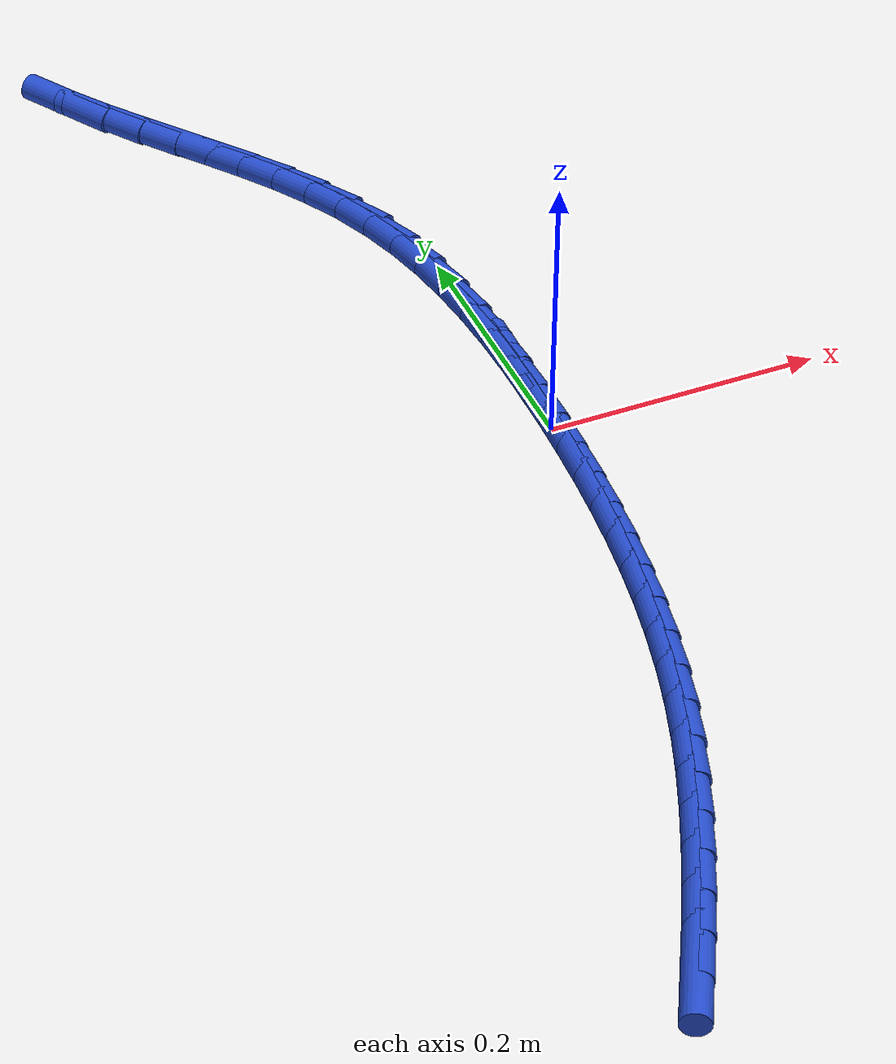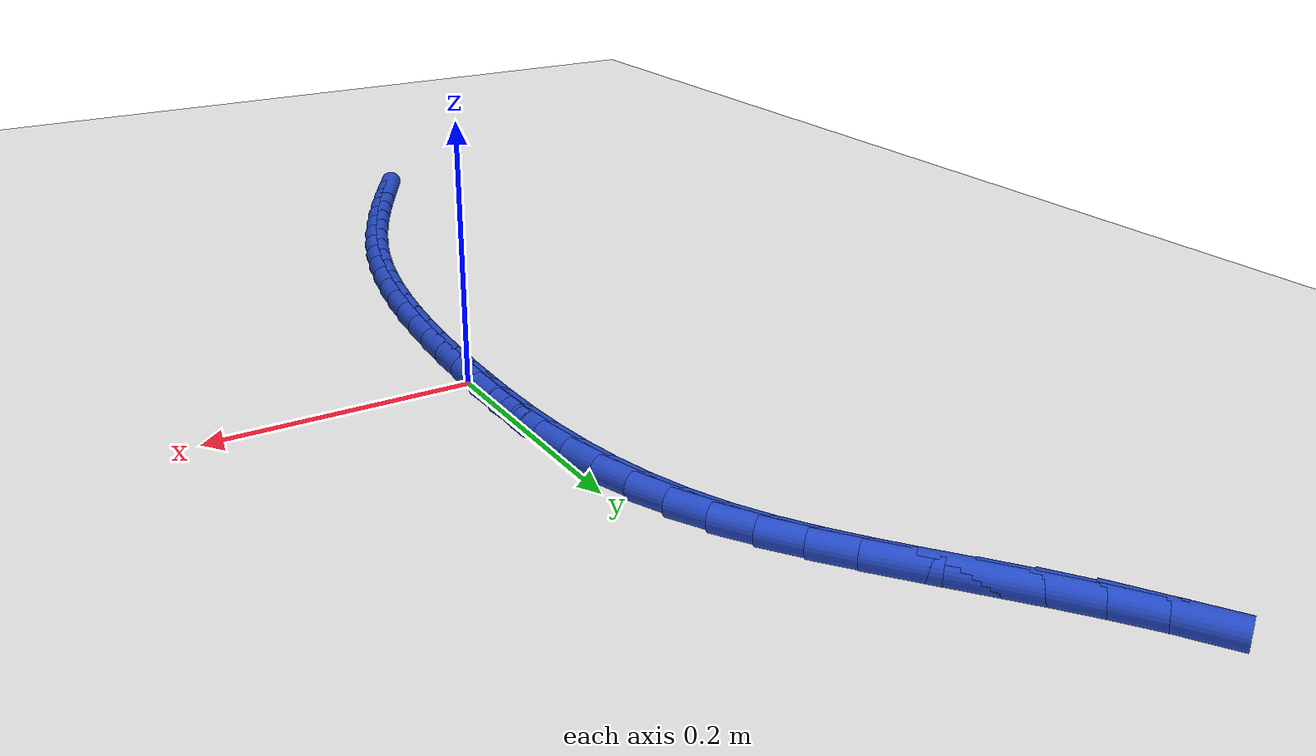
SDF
<sdf version="1.6">
 <world name="default">
  <model name="ground_plane">
   <static>1</static>
   <link name="link">
    <collision name="collision">
     <geometry><plane><normal>0 0 1</normal><size>100 100</size></plane></geometry>
     <surface><friction><ode><mu>100</mu><mu2>50</mu2></ode></friction></surface>
    </collision>
    <visual name="visual">
     <cast_shadows>0</cast_shadows>
     <geometry><plane><normal>0 0 1</normal><size>100 100</size></plane></geometry>
     <material>
      <script><uri>file://media/materials/scripts/gazebo.material</uri><name>Gazebo/WhiteGlow</name></script>
     </material>
    </visual>
   </link>
  </model>
  <model name="line">
   <link name="link_0">
    <pose>-9.540979117872439e-18 -2.7755575615628914e-17 0.01 0 1.57 1.5509723002207512</pose>
    <collision name="collision">
     <geometry><cylinder><radius>0.01</radius><length>0.08</length></cylinder></geometry>
    </collision>
    <visual name="visual">
     <material>
      <script><name>Gazebo/Blue</name><uri>file://media/materials/scripts/gazebo.material</uri></script>
     </material>
     <geometry><cylinder><radius>0.01</radius><length>0.08</length></cylinder></geometry>
    </visual>
   </link>
   <link name="link_1">
    <pose>0.0006480934380880519 0.032688038170322134 0.01 0 1.57 -1.5671096846617614</pose>
    <collision name="collision">
     <geometry><cylinder><radius>0.01</radius><length>0.08</length></cylinder></geometry>
    </collision>
    <visual name="visual">
     <material>
      <script><name>Gazebo/Blue</name><uri>file://media/materials/scripts/gazebo.material</uri></script>
     </material>
     <geometry><cylinder><radius>0.01</radius><length>0.08</length></cylinder></geometry>
    </visual>
   </link>
   <link name="link_2">
    <pose>0.000527345814850162 0.06544062760986999 0.01 0 1.57 -1.5366535923674727</pose>
    <collision name="collision">
     <geometry><cylinder><radius>0.01</radius><length>0.08</length></cylinder></geometry>
    </collision>
    <visual name="visual">
     <material>
      <script><name>Gazebo/Blue</name><uri>file://media/materials/scripts/gazebo.material</uri></script>
     </material>
     <geometry><cylinder><radius>0.01</radius><length>0.08</length></cylinder></geometry>
    </visual>
   </link>
   <link name="link_3">
    <pose>-0.0005877928225679215 0.09808901699485471 0.01 0 1.57 -1.498795968035626</pose>
    <collision name="collision">
     <geometry><cylinder><radius>0.01</radius><length>0.08</length></cylinder></geometry>
    </collision>
    <visual name="visual">
     <material>
      <script><name>Gazebo/Blue</name><uri>file://media/materials/scripts/gazebo.material</uri></script>
     </material>
     <geometry><cylinder><radius>0.01</radius><length>0.08</length></cylinder></geometry>
    </visual>
   </link>
   <link name="link_4">
    <pose>-0.0029228724270204402 0.13046445500148754 0.01 0 1.57 -1.4529568356450675</pose>
    <collision name="collision">
     <geometry><cylinder><radius>0.01</radius><length>0.08</length></cylinder></geometry>
    </collision>
    <visual name="visual">
     <material>
      <script><name>Gazebo/Blue</name><uri>file://media/materials/scripts/gazebo.material</uri></script>
     </material>
     <geometry><cylinder><radius>0.01</radius><length>0.08</length></cylinder></geometry>
    </visual>
   </link>
   <link name="link_5">
    <pose>-0.00670344295136164 0.1623981903059797 0.01 0 1.57 -1.3984789537789857</pose>
    <collision name="collision">
     <geometry><cylinder><radius>0.01</radius><length>0.08</length></cylinder></geometry>
    </collision>
    <visual name="visual">
     <material>
      <script><name>Gazebo/Blue</name><uri>file://media/materials/scripts/gazebo.material</uri></script>
     </material>
     <geometry><cylinder><radius>0.01</radius><length>0.08</length></cylinder></geometry>
    </visual>
   </link>
   <link name="link_6">
    <pose>-0.012155054348445762 0.19372147158454245 0.01 0 1.57 -1.334705840565855</pose>
    <collision name="collision">
     <geometry><cylinder><radius>0.01</radius><length>0.08</length></cylinder></geometry>
    </collision>
    <visual name="visual">
     <material>
      <script><name>Gazebo/Blue</name><uri>file://media/materials/scripts/gazebo.material</uri></script>
     </material>
     <geometry><cylinder><radius>0.01</radius><length>0.08</length></cylinder></geometry>
    </visual>
   </link>
   <link name="link_7">
    <pose>-0.019503256571127038 0.2242655475133869 0.01 0 1.57 -1.2611061068454434</pose>
    <collision name="collision">
     <geometry><cylinder><radius>0.01</radius><length>0.08</length></cylinder></geometry>
    </collision>
    <visual name="visual">
     <material>
      <script><name>Gazebo/Blue</name><uri>file://media/materials/scripts/gazebo.material</uri></script>
     </material>
     <geometry><cylinder><radius>0.01</radius><length>0.08</length></cylinder></geometry>
    </visual>
   </link>
   <link name="link_8">
    <pose>-0.028973599572259735 0.2538616667687244 0.01 0 1.57 -1.1774538288376382</pose>
    <collision name="collision">
     <geometry><cylinder><radius>0.01</radius><length>0.08</length></cylinder></geometry>
    </collision>
    <visual name="visual">
     <material>
      <script><name>Gazebo/Blue</name><uri>file://media/materials/scripts/gazebo.material</uri></script>
     </material>
     <geometry><cylinder><radius>0.01</radius><length>0.08</length></cylinder></geometry>
    </visual>
   </link>
   <link name="link_9">
    <pose>-0.040791632058986144 0.28234107882616594 0.01 0 1.57 -1.0889719972497625</pose>
    <collision name="collision">
     <geometry><cylinder><radius>0.01</radius><length>0.08</length></cylinder></geometry>
    </collision>
    <visual name="visual">
     <material>
      <script><name>Gazebo/Blue</name><uri>file://media/materials/scripts/gazebo.material</uri></script>
     </material>
     <geometry><cylinder><radius>0.01</radius><length>0.08</length></cylinder></geometry>
    </visual>
   </link>
   <link name="link_10">
    <pose>-0.05505510315193037 0.3096170448844138 0.01 0 1.57 -1.0150823429295994</pose>
    <collision name="collision">
     <geometry><cylinder><radius>0.01</radius><length>0.08</length></cylinder></geometry>
    </collision>
    <visual name="visual">
     <material>
      <script><name>Gazebo/Blue</name><uri>file://media/materials/scripts/gazebo.material</uri></script>
     </material>
     <geometry><cylinder><radius>0.01</radius><length>0.08</length></cylinder></geometry>
    </visual>
   </link>
   <link name="link_11">
    <pose>-0.07138294812909438 0.33591009120728466 0.01 0 1.57 -0.9606677409715202</pose>
    <collision name="collision">
     <geometry><cylinder><radius>0.01</radius><length>0.08</length></cylinder></geometry>
    </collision>
    <visual name="visual">
     <material>
      <script><name>Gazebo/Blue</name><uri>file://media/materials/scripts/gazebo.material</uri></script>
     </material>
     <geometry><cylinder><radius>0.01</radius><length>0.08</length></cylinder></geometry>
    </visual>
   </link>
   <link name="link_12">
    <pose>-0.0892819881450799 0.3615126900851312 0.01 0 1.57 -0.9254292658346407</pose>
    <collision name="collision">
     <geometry><cylinder><radius>0.01</radius><length>0.08</length></cylinder></geometry>
    </collision>
    <visual name="visual">
     <material>
      <script><name>Gazebo/Blue</name><uri>file://media/materials/scripts/gazebo.material</uri></script>
     </material>
     <geometry><cylinder><radius>0.01</radius><length>0.08</length></cylinder></geometry>
    </visual>
   </link>
   <link name="link_13">
    <pose>-0.1082590443544886 0.38671731380830593 0.01 0 1.57 -0.9087521366788066</pose>
    <collision name="collision">
     <geometry><cylinder><radius>0.01</radius><length>0.08</length></cylinder></geometry>
    </collision>
    <visual name="visual">
     <material>
      <script><name>Gazebo/Blue</name><uri>file://media/materials/scripts/gazebo.material</uri></script>
     </material>
     <geometry><cylinder><radius>0.01</radius><length>0.08</length></cylinder></geometry>
    </visual>
   </link>
   <link name="link_14">
    <pose>-0.12782093791192217 0.41181643466716134 0.01 0 1.57 -0.9100836072281419</pose>
    <collision name="collision">
     <geometry><cylinder><radius>0.01</radius><length>0.08</length></cylinder></geometry>
    </collision>
    <visual name="visual">
     <material>
      <script><name>Gazebo/Blue</name><uri>file://media/materials/scripts/gazebo.material</uri></script>
     </material>
     <geometry><cylinder><radius>0.01</radius><length>0.08</length></cylinder></geometry>
    </visual>
   </link>
   <link name="link_15">
    <pose>-0.14747448997198237 0.4371025249520501 0.01 0 1.57 -0.9290889750747698</pose>
    <collision name="collision">
     <geometry><cylinder><radius>0.01</radius><length>0.08</length></cylinder></geometry>
    </collision>
    <visual name="visual">
     <material>
      <script><name>Gazebo/Blue</name><uri>file://media/materials/scripts/gazebo.material</uri></script>
     </material>
     <geometry><cylinder><radius>0.01</radius><length>0.08</length></cylinder></geometry>
    </visual>
   </link>
   <link name="link_16">
    <pose>-0.16672652168927088 0.4628680569533247 0.01 0 1.57 -0.9656273788621806</pose>
    <collision name="collision">
     <geometry><cylinder><radius>0.01</radius><length>0.08</length></cylinder></geometry>
    </collision>
    <visual name="visual">
     <material>
      <script><name>Gazebo/Blue</name><uri>file://media/materials/scripts/gazebo.material</uri></script>
     </material>
     <geometry><cylinder><radius>0.01</radius><length>0.08</length></cylinder></geometry>
    </visual>
   </link>
   <link name="link_17">
    <pose>-0.1850838542183893 0.48940550296133756 0.01 0 1.57 -1.0195694857574735</pose>
    <collision name="collision">
     <geometry><cylinder><radius>0.01</radius><length>0.08</length></cylinder></geometry>
    </collision>
    <visual name="visual">
     <material>
      <script><name>Gazebo/Blue</name><uri>file://media/materials/scripts/gazebo.material</uri></script>
     </material>
     <geometry><cylinder><radius>0.01</radius><length>0.08</length></cylinder></geometry>
    </visual>
   </link>
   <link name="link_204">
    <pose>-0.1290310165517411 -0.485487745063158 0.01 0 1.57 1.091764516683688</pose>
    <collision name="collision">
     <geometry><cylinder><radius>0.01</radius><length>0.08</length></cylinder></geometry>
    </collision>
    <visual name="visual">
     <material>
      <script><name>Gazebo/Blue</name><uri>file://media/materials/scripts/gazebo.material</uri></script>
     </material>
     <geometry><cylinder><radius>0.01</radius><length>0.08</length></cylinder></geometry>
    </visual>
   </link>
   <link name="link_205">
    <pose>-0.1142950888691149 -0.45711564123738885 0.01 0 1.57 1.1075572206497806</pose>
    <collision name="collision">
     <geometry><cylinder><radius>0.01</radius><length>0.08</length></cylinder></geometry>
    </collision>
    <visual name="visual">
     <material>
      <script><name>Gazebo/Blue</name><uri>file://media/materials/scripts/gazebo.material</uri></script>
     </material>
     <geometry><cylinder><radius>0.01</radius><length>0.08</length></cylinder></geometry>
    </visual>
   </link>
   <link name="link_206">
    <pose>-0.10004228717449846 -0.42858090249181363 0.01 0 1.57 1.127632913566526</pose>
    <collision name="collision">
     <geometry><cylinder><radius>0.01</radius><length>0.08</length></cylinder></geometry>
    </collision>
    <visual name="visual">
     <material>
      <script><name>Gazebo/Blue</name><uri>file://media/materials/scripts/gazebo.material</uri></script>
     </material>
     <geometry><cylinder><radius>0.01</radius><length>0.08</length></cylinder></geometry>
    </visual>
   </link>
   <link name="link_207">
    <pose>-0.08640639933463148 -0.3998526527116633 0.01 0 1.57 1.1520717726314615</pose>
    <collision name="collision">
     <geometry><cylinder><radius>0.01</radius><length>0.08</length></cylinder></geometry>
    </collision>
    <visual name="visual">
     <material>
      <script><name>Gazebo/Blue</name><uri>file://media/materials/scripts/gazebo.material</uri></script>
     </material>
     <geometry><cylinder><radius>0.01</radius><length>0.08</length></cylinder></geometry>
    </visual>
   </link>
   <link name="link_208">
    <pose>-0.07352121321625467 -0.3709000157821714 0.01 0 1.57 1.1809531596321705</pose>
    <collision name="collision">
     <geometry><cylinder><radius>0.01</radius><length>0.08</length></cylinder></geometry>
    </collision>
    <visual name="visual">
     <material>
      <script><name>Gazebo/Blue</name><uri>file://media/materials/scripts/gazebo.material</uri></script>
     </material>
     <geometry><cylinder><radius>0.01</radius><length>0.08</length></cylinder></geometry>
    </visual>
   </link>
   <link name="link_209">
    <pose>-0.061520516686107654 -0.34169211558856877 0.01 0 1.57 1.214341632685091</pose>
    <collision name="collision">
     <geometry><cylinder><radius>0.01</radius><length>0.08</length></cylinder></geometry>
    </collision>
    <visual name="visual">
     <material>
      <script><name>Gazebo/Blue</name><uri>file://media/materials/scripts/gazebo.material</uri></script>
     </material>
     <geometry><cylinder><radius>0.01</radius><length>0.08</length></cylinder></geometry>
    </visual>
   </link>
   <link name="link_210">
    <pose>-0.0505380976109305 -0.31219807601608734 0.01 0 1.57 1.2522694410797786</pose>
    <collision name="collision">
     <geometry><cylinder><radius>0.01</radius><length>0.08</length></cylinder></geometry>
    </collision>
    <visual name="visual">
     <material>
      <script><name>Gazebo/Blue</name><uri>file://media/materials/scripts/gazebo.material</uri></script>
     </material>
     <geometry><cylinder><radius>0.01</radius><length>0.08</length></cylinder></geometry>
    </visual>
   </link>
   <link name="link_211">
    <pose>-0.040707743857463216 -0.282387020949959 0.01 0 1.57 1.2936183815431148</pose>
    <collision name="collision">
     <geometry><cylinder><radius>0.01</radius><length>0.08</length></cylinder></geometry>
    </collision>
    <visual name="visual">
     <material>
      <script><name>Gazebo/Blue</name><uri>file://media/materials/scripts/gazebo.material</uri></script>
     </material>
     <geometry><cylinder><radius>0.01</radius><length>0.08</length></cylinder></geometry>
    </visual>
   </link>
   <link name="link_212">
    <pose>-0.032129421560458823 -0.25223489323744225 0.01 0 1.57 1.3335891676118912</pose>
    <collision name="collision">
     <geometry><cylinder><radius>0.01</radius><length>0.08</length></cylinder></geometry>
    </collision>
    <visual name="visual">
     <material>
      <script><name>Gazebo/Blue</name><uri>file://media/materials/scripts/gazebo.material</uri></script>
     </material>
     <geometry><cylinder><radius>0.01</radius><length>0.08</length></cylinder></geometry>
    </visual>
   </link>
   <link name="link_213">
    <pose>-0.024758651953657642 -0.2217467579568967 0.01 0 1.57 1.3707810950247452</pose>
    <collision name="collision">
     <geometry><cylinder><radius>0.01</radius><length>0.08</length></cylinder></geometry>
    </collision>
    <visual name="visual">
     <material>
      <script><name>Gazebo/Blue</name><uri>file://media/materials/scripts/gazebo.material</uri></script>
     </material>
     <geometry><cylinder><radius>0.01</radius><length>0.08</length></cylinder></geometry>
    </visual>
   </link>
   <link name="link_214">
    <pose>-0.018512402668165333 -0.19093545316390315 0.01 0 1.57 1.4050905112721532</pose>
    <collision name="collision">
     <geometry><cylinder><radius>0.01</radius><length>0.08</length></cylinder></geometry>
    </collision>
    <visual name="visual">
     <material>
      <script><name>Gazebo/Blue</name><uri>file://media/materials/scripts/gazebo.material</uri></script>
     </material>
     <geometry><cylinder><radius>0.01</radius><length>0.08</length></cylinder></geometry>
    </visual>
   </link>
   <link name="link_215">
    <pose>-0.013307640959290835 -0.1598138169898092 0.01 0 1.57 1.4364599260351334</pose>
    <collision name="collision">
     <geometry><cylinder><radius>0.01</radius><length>0.08</length></cylinder></geometry>
    </collision>
    <visual name="visual">
     <material>
      <script><name>Gazebo/Blue</name><uri>file://media/materials/scripts/gazebo.material</uri></script>
     </material>
     <geometry><cylinder><radius>0.01</radius><length>0.08</length></cylinder></geometry>
    </visual>
   </link>
   <link name="link_216">
    <pose>-0.009061334082343053 -0.1283946875659617 0.01 0 1.57 1.4648699260173434</pose>
    <collision name="collision">
     <geometry><cylinder><radius>0.01</radius><length>0.08</length></cylinder></geometry>
    </collision>
    <visual name="visual">
     <material>
      <script><name>Gazebo/Blue</name><uri>file://media/materials/scripts/gazebo.material</uri></script>
     </material>
     <geometry><cylinder><radius>0.01</radius><length>0.08</length></cylinder></geometry>
    </visual>
   </link>
   <link name="link_217">
    <pose>-0.0056904492926311695 -0.09669090302370996 0.01 0 1.57 1.4903309735612262</pose>
    <collision name="collision">
     <geometry><cylinder><radius>0.01</radius><length>0.08</length></cylinder></geometry>
    </collision>
    <visual name="visual">
     <material>
      <script><name>Gazebo/Blue</name><uri>file://media/materials/scripts/gazebo.material</uri></script>
     </material>
     <geometry><cylinder><radius>0.01</radius><length>0.08</length></cylinder></geometry>
    </visual>
   </link>
   <link name="link_218">
    <pose>-0.0031119538454640484 -0.06471530149440073 0.01 0 1.57 1.512875666376677</pose>
    <collision name="collision">
     <geometry><cylinder><radius>0.01</radius><length>0.08</length></cylinder></geometry>
    </collision>
    <visual name="visual">
     <material>
      <script><name>Gazebo/Blue</name><uri>file://media/materials/scripts/gazebo.material</uri></script>
     </material>
     <geometry><cylinder><radius>0.01</radius><length>0.08</length></cylinder></geometry>
    </visual>
   </link>
   <link name="link_219">
    <pose>-0.001242814996150674 -0.032480721109381785 0.01 0 1.57 1.5325518247173973</pose>
    <collision name="collision">
     <geometry><cylinder><radius>0.01</radius><length>0.08</length></cylinder></geometry>
    </collision>
    <visual name="visual">
     <material>
      <script><name>Gazebo/Blue</name><uri>file://media/materials/scripts/gazebo.material</uri></script>
     </material>
     <geometry><cylinder><radius>0.01</radius><length>0.08</length></cylinder></geometry>
    </visual>
   </link>
   <link name="link_220">
    <pose>4.336808689942018e-19 5.551115123125783e-17 0.01 0 1.57 1.5494165873827463</pose>
    <collision name="collision">
     <geometry><cylinder><radius>0.01</radius><length>0.08</length></cylinder></geometry>
    </collision>
    <visual name="visual">
     <material>
      <script><name>Gazebo/Blue</name><uri>file://media/materials/scripts/gazebo.material</uri></script>
     </material>
     <geometry><cylinder><radius>0.01</radius><length>0.08</length></cylinder></geometry>
    </visual>
   </link>
   <link name="link_221">
    <pose>0.0006995238876789248 0.03271402370239476 0.01 0 1.57 1.5635315618631354</pose>
    <collision name="collision">
     <geometry><cylinder><radius>0.01</radius><length>0.08</length></cylinder></geometry>
    </collision>
    <visual name="visual">
     <material>
      <script><name>Gazebo/Blue</name><uri>file://media/materials/scripts/gazebo.material</uri></script>
     </material>
     <geometry><cylinder><radius>0.01</radius><length>0.08</length></cylinder></geometry>
    </visual>
   </link>
   <link name="link_222">
    <pose>0.0009387894115771877 0.06564851186645781 0.01 0 1.57 1.5564970624310284</pose>
    <collision name="collision">
     <geometry><cylinder><radius>0.01</radius><length>0.08</length></cylinder></geometry>
    </collision>
    <visual name="visual">
     <material>
      <script><name>Gazebo/Blue</name><uri>file://media/materials/scripts/gazebo.material</uri></script>
     </material>
     <geometry><cylinder><radius>0.01</radius><length>0.08</length></cylinder></geometry>
    </visual>
   </link>
  </model>
 </world>
</sdf>
